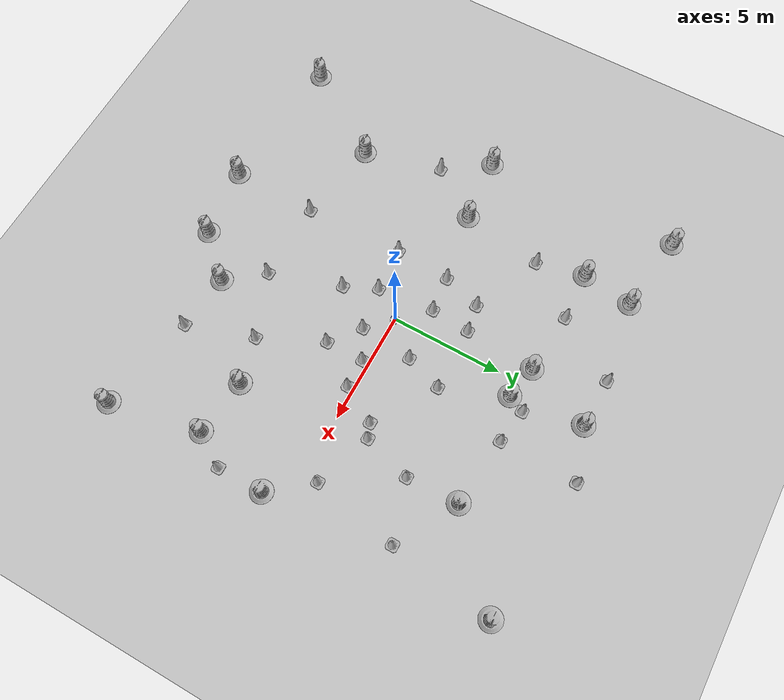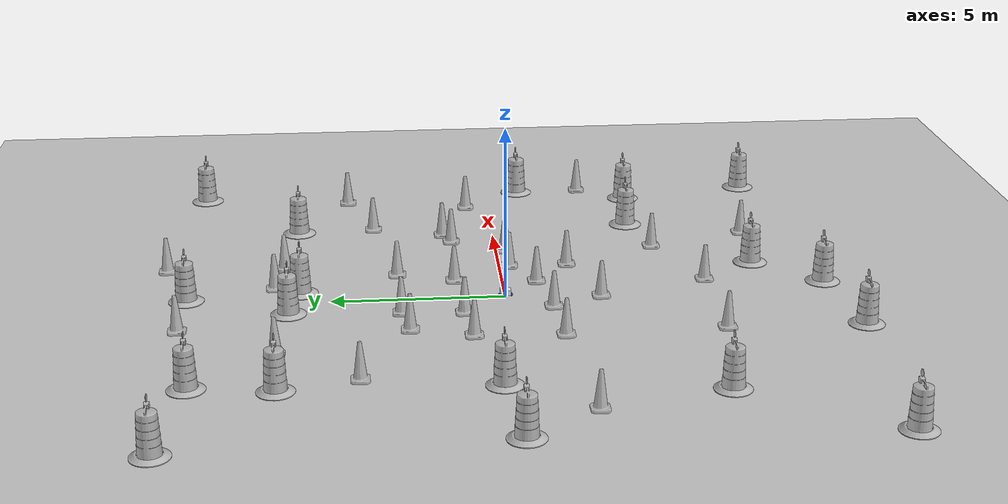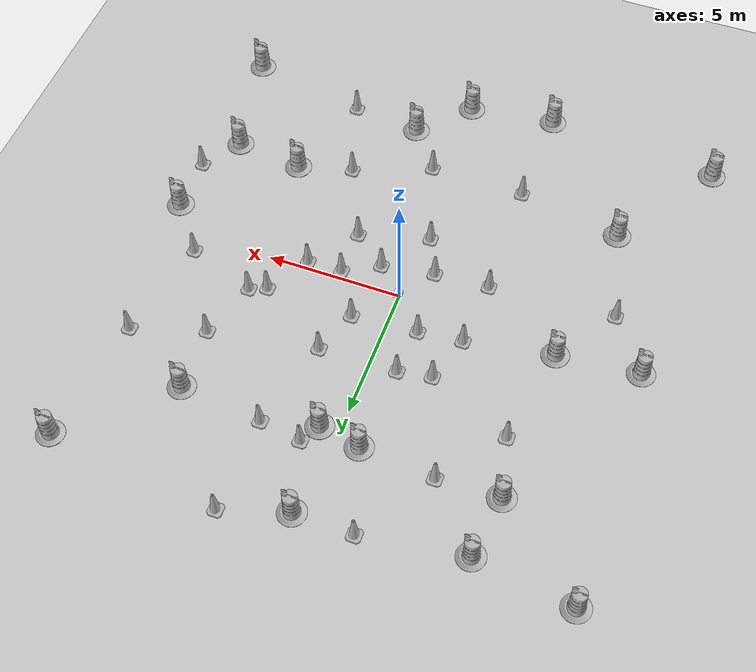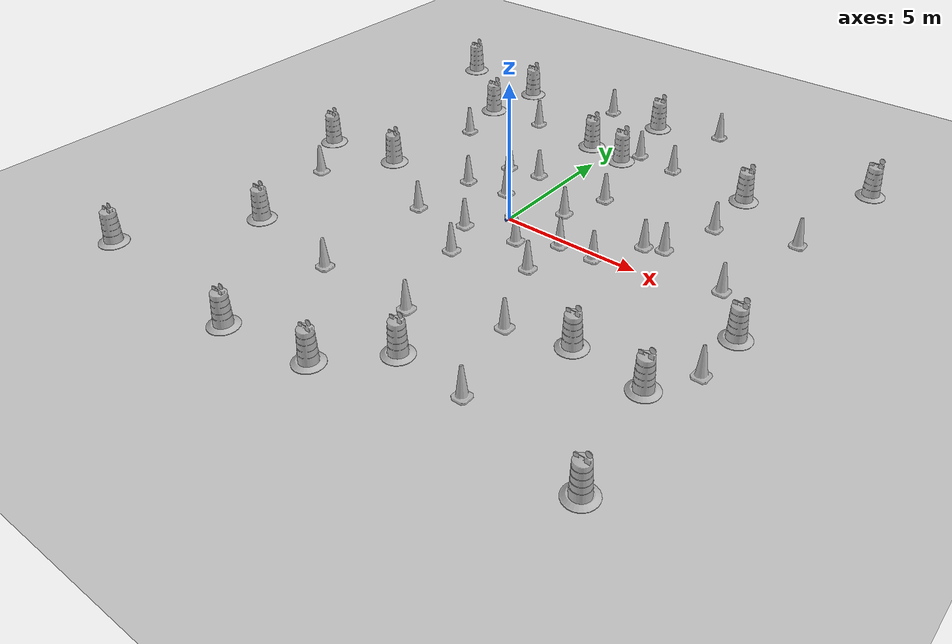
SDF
<sdf version="1.7">
 <world name="default">
  <light name="sun" type="directional">
   <pose>0 0 10 0 -0 0</pose>
   <diffuse>0.8 0.8 0.8 1</diffuse>
   <specular>0.2 0.2 0.2 1</specular>
   <attenuation>
    <range>1000</range>
    <constant>0.9</constant>
    <linear>0.01</linear>
    <quadratic>0.001</quadratic>
   </attenuation>
   <direction>-0.5 0.1 -0.9</direction>
   <spot><inner_angle>0</inner_angle><outer_angle>0</outer_angle><falloff>0</falloff></spot>
  </light>
  <model name="ground_plane">
   <static>1</static>
   <link name="link">
    <collision name="collision">
     <geometry><plane><normal>0 0 1</normal><size>100 100</size></plane></geometry>
     <surface>
      <contact><collide_bitmask>65535</collide_bitmask></contact>
      <friction><ode><mu>100</mu><mu2>50</mu2></ode></friction>
     </surface>
    </collision>
    <visual name="visual">
     <cast_shadows>0</cast_shadows>
     <geometry><plane><normal>0 0 1</normal><size>100 100</size></plane></geometry>
     <material>
      <script><uri>file://media/materials/scripts/gazebo.material</uri><name>Gazebo/Grey</name></script>
     </material>
    </visual>
   </link>
  </model>
  <gravity>0 0 -9.8</gravity>
  <magnetic_field>6e-06 2.3e-05 -4.2e-05</magnetic_field>
  <atmosphere type="adiabatic"/>
  <physics type="ode">
   <max_step_size>0.001</max_step_size>
   <real_time_factor>1</real_time_factor>
   <real_time_update_rate>1000</real_time_update_rate>
  </physics>
  <scene><ambient>0.4 0.4 0.4 1</ambient><background>0.7 0.7 0.7 1</background><shadows>1</shadows></scene>
  <audio><device>default</device></audio>
  <spherical_coordinates>
   <surface_model>EARTH_WGS84</surface_model>
   <latitude_deg>0</latitude_deg>
   <longitude_deg>0</longitude_deg>
   <elevation>0</elevation>
   <heading_deg>0</heading_deg>
  </spherical_coordinates>
  <model name="my_bot">
   <link name="base_link">
    <inertial>
     <pose>0.055714 0 0.078571 0 -0 0</pose>
     <mass>0.7</mass>
     <inertia>
      <ixx>0.0064169</ixx>
      <ixy>0</ixy>
      <ixz>0.00118929</ixz>
      <iyy>0.00745405</iyy>
      <iyz>0</iyz>
      <izz>0.00876214</izz>
     </inertia>
    </inertial>
    <collision name="base_link_fixed_joint_lump__chassis_collision">
     <pose>0.05 0 0.075 0 -0 0</pose>
     <geometry><box><size>0.3 0.3 0.15</size></box></geometry>
    </collision>
    <collision name="base_link_fixed_joint_lump__caster_wheel_collision_1">
     <pose>0.14 0 0 0 -0 0</pose>
     <geometry><sphere><radius>0.05</radius></sphere></geometry>
     <surface><friction><ode><mu>0.001</mu><mu2>0.001</mu2></ode></friction></surface>
    </collision>
    <collision name="base_link_fixed_joint_lump__laser_frame_collision_2">
     <pose>0 0 0.175 0 -0 0</pose>
     <geometry><cylinder><length>0.04</length><radius>0.05</radius></cylinder></geometry>
    </collision>
    <visual name="base_link_fixed_joint_lump__chassis_visual">
     <pose>0.05 0 0.075 0 -0 0</pose>
     <geometry><box><size>0.3 0.3 0.15</size></box></geometry>
     <material>
      <script><name>Gazebo/White</name><uri>file://media/materials/scripts/gazebo.material</uri></script>
     </material>
    </visual>
    <visual name="base_link_fixed_joint_lump__caster_wheel_visual_1">
     <pose>0.14 0 0 0 -0 0</pose>
     <geometry><sphere><radius>0.05</radius></sphere></geometry>
     <material>
      <script><name>Gazebo/Black</name><uri>file://media/materials/scripts/gazebo.material</uri></script>
     </material>
    </visual>
    <visual name="base_link_fixed_joint_lump__laser_frame_visual_2">
     <pose>0 0 0.175 0 -0 0</pose>
     <geometry><cylinder><length>0.04</length><radius>0.05</radius></cylinder></geometry>
     <material>
      <script><name>Gazebo/Red</name><uri>file://media/materials/scripts/gazebo.material</uri></script>
     </material>
    </visual>
    <sensor name="laser" type="ray">
     <visualize>1</visualize>
     <update_rate>10</update_rate>
     <ray>
      <scan>
       <horizontal>
        <samples>360</samples>
        <resolution>1</resolution>
        <min_angle>-3.14</min_angle>
        <max_angle>3.14</max_angle>
       </horizontal>
       <vertical><samples>1</samples><min_angle>0</min_angle><max_angle>0</max_angle></vertical>
      </scan>
      <range><min>0.3</min><max>12</max></range>
     </ray>
     <plugin name="laser_controller" filename="libgazebo_ros_ray_sensor.so">
      <ros><argument>~/out:=scan</argument></ros>
      <output_type>sensor_msgs/LaserScan</output_type>
      <frame_name>laser_frame</frame_name>
     </plugin>
     <pose>0 0 0.175 0 -0 0</pose>
    </sensor>
   </link>
   <joint name="left_wheel_joint" type="revolute">
    <pose relative_to="base_link">0 0.175 0 -1.5708 0 0</pose>
    <parent>base_link</parent>
    <child>left_wheel</child>
    <axis>
     <xyz>0 0 1</xyz>
     <limit><lower>-1e+16</lower><upper>1e+16</upper></limit>
     <dynamics><spring_reference>0</spring_reference><spring_stiffness>0</spring_stiffness></dynamics>
    </axis>
   </joint>
   <link name="left_wheel">
    <pose relative_to="left_wheel_joint">0 0 0 0 -0 0</pose>
    <inertial>
     <mass>0.1</mass>
     <inertia>
      <ixx>7.58333e-05</ixx>
      <ixy>0</ixy>
      <ixz>0</ixz>
      <iyy>7.58333e-05</iyy>
      <iyz>0</iyz>
      <izz>0.000125</izz>
     </inertia>
    </inertial>
    <collision name="left_wheel_collision">
     <geometry><cylinder><length>0.04</length><radius>0.05</radius></cylinder></geometry>
    </collision>
    <visual name="left_wheel_visual">
     <geometry><cylinder><length>0.04</length><radius>0.05</radius></cylinder></geometry>
     <material>
      <script><name>Gazebo/Blue</name><uri>file://media/materials/scripts/gazebo.material</uri></script>
     </material>
    </visual>
   </link>
   <joint name="right_wheel_joint" type="revolute">
    <pose relative_to="base_link">0 -0.175 0 1.5708 -0 0</pose>
    <parent>base_link</parent>
    <child>right_wheel</child>
    <axis>
     <xyz>0 0 -1</xyz>
     <limit><lower>-1e+16</lower><upper>1e+16</upper></limit>
     <dynamics><spring_reference>0</spring_reference><spring_stiffness>0</spring_stiffness></dynamics>
    </axis>
   </joint>
   <link name="right_wheel">
    <pose relative_to="right_wheel_joint">0 0 0 0 -0 0</pose>
    <inertial>
     <mass>0.1</mass>
     <inertia>
      <ixx>7.58333e-05</ixx>
      <ixy>0</ixy>
      <ixz>0</ixz>
      <iyy>7.58333e-05</iyy>
      <iyz>0</iyz>
      <izz>0.000125</izz>
     </inertia>
    </inertial>
    <collision name="right_wheel_collision">
     <geometry><cylinder><length>0.04</length><radius>0.05</radius></cylinder></geometry>
    </collision>
    <visual name="right_wheel_visual">
     <geometry><cylinder><length>0.04</length><radius>0.05</radius></cylinder></geometry>
     <material>
      <script><name>Gazebo/Blue</name><uri>file://media/materials/scripts/gazebo.material</uri></script>
     </material>
    </visual>
   </link>
   <static>0</static>
   <plugin name="diff_drive" filename="libgazebo_ros_diff_drive.so">
    <left_joint>left_wheel_joint</left_joint>
    <right_joint>right_wheel_joint</right_joint>
    <wheel_separation>0.35</wheel_separation>
    <wheel_diameter>0.1</wheel_diameter>
    <max_wheel_torque>200</max_wheel_torque>
    <max_wheel_acceleration>10.0</max_wheel_acceleration>
    <odometry_frame>odom</odometry_frame>
    <robot_base_frame>base_link</robot_base_frame>
    <publish_odom>1</publish_odom>
    <publish_odom_tf>1</publish_odom_tf>
    <publish_wheel_tf>1</publish_wheel_tf>
   </plugin>
   <pose>0.005518 3.7e-05 0.05 0 1.2e-05 0.00013</pose>
  </model>
  <model name="Construction Cone">
   <link name="link">
    <collision name="collision">
     <geometry>
      <mesh><scale>10 10 10</scale><uri>model://construction_cone/meshes/construction_cone.dae</uri></mesh>
     </geometry>
    </collision>
    <visual name="visual">
     <geometry>
      <mesh><scale>10 10 10</scale><uri>model://construction_cone/meshes/construction_cone.dae</uri></mesh>
     </geometry>
    </visual>
    <inertial>
     <inertia><ixx>1</ixx><ixy>0</ixy><ixz>0</ixz><iyy>1</iyy><iyz>0</iyz><izz>1</izz></inertia>
     <mass>1</mass>
    </inertial>
   </link>
   <pose>2.33774 -2.02492 -0 0 -1e-06 0</pose>
  </model>
  <model name="Construction Barrel">
   <link name="link">
    <inertial>
     <pose>0 0 0.4 0 -0 0</pose>
     <mass>500</mass>
     <inertia><ixx>51.2096</ixx><iyy>51.2096</iyy><izz>25</izz><ixy>0</ixy><ixz>0</ixz><iyz>0</iyz></inertia>
    </inertial>
    <collision name="collision">
     <geometry><mesh><uri>model://construction_barrel/meshes/construction_barrel.dae</uri></mesh></geometry>
    </collision>
    <visual name="visual">
     <geometry><mesh><uri>model://construction_barrel/meshes/construction_barrel.dae</uri></mesh></geometry>
    </visual>
   </link>
   <pose>-9.25869 -9.20334 -1e-06 3e-06 7e-06 -4e-05</pose>
  </model>
  <model name="Construction Barrel_0">
   <link name="link">
    <inertial>
     <pose>0 0 0.4 0 -0 0</pose>
     <mass>500</mass>
     <inertia><ixx>51.2096</ixx><iyy>51.2096</iyy><izz>25</izz><ixy>0</ixy><ixz>0</ixz><iyz>0</iyz></inertia>
    </inertial>
    <collision name="collision">
     <geometry><mesh><uri>model://construction_barrel/meshes/construction_barrel.dae</uri></mesh></geometry>
    </collision>
    <visual name="visual">
     <geometry><mesh><uri>model://construction_barrel/meshes/construction_barrel.dae</uri></mesh></geometry>
    </visual>
   </link>
   <pose>-9.06813 9.0915 -0 1e-06 -1e-06 -3.8e-05</pose>
  </model>
  <model name="Construction Barrel_1">
   <link name="link">
    <inertial>
     <pose>0 0 0.4 0 -0 0</pose>
     <mass>500</mass>
     <inertia><ixx>51.2096</ixx><iyy>51.2096</iyy><izz>25</izz><ixy>0</ixy><ixz>0</ixz><iyz>0</iyz></inertia>
    </inertial>
    <collision name="collision">
     <geometry><mesh><uri>model://construction_barrel/meshes/construction_barrel.dae</uri></mesh></geometry>
    </collision>
    <visual name="visual">
     <geometry><mesh><uri>model://construction_barrel/meshes/construction_barrel.dae</uri></mesh></geometry>
    </visual>
   </link>
   <pose>-8.88341 0.243695 -1e-06 3e-06 -0 -3.8e-05</pose>
  </model>
  <model name="Construction Barrel_2">
   <link name="link">
    <inertial>
     <pose>0 0 0.4 0 -0 0</pose>
     <mass>500</mass>
     <inertia><ixx>51.2096</ixx><iyy>51.2096</iyy><izz>25</izz><ixy>0</ixy><ixz>0</ixz><iyz>0</iyz></inertia>
    </inertial>
    <collision name="collision">
     <geometry><mesh><uri>model://construction_barrel/meshes/construction_barrel.dae</uri></mesh></geometry>
    </collision>
    <visual name="visual">
     <geometry><mesh><uri>model://construction_barrel/meshes/construction_barrel.dae</uri></mesh></geometry>
    </visual>
   </link>
   <pose>0.362113 -9.35849 0 0 0 -3.3e-05</pose>
  </model>
  <model name="Construction Barrel_3">
   <link name="link">
    <inertial>
     <pose>0 0 0.4 0 -0 0</pose>
     <mass>500</mass>
     <inertia><ixx>51.2096</ixx><iyy>51.2096</iyy><izz>25</izz><ixy>0</ixy><ixz>0</ixz><iyz>0</iyz></inertia>
    </inertial>
    <collision name="collision">
     <geometry><mesh><uri>model://construction_barrel/meshes/construction_barrel.dae</uri></mesh></geometry>
    </collision>
    <visual name="visual">
     <geometry><mesh><uri>model://construction_barrel/meshes/construction_barrel.dae</uri></mesh></geometry>
    </visual>
   </link>
   <pose>5.66029 -4.31001 -1e-06 0 5e-06 -3.1e-05</pose>
  </model>
  <model name="Construction Barrel_4">
   <link name="link">
    <inertial>
     <pose>0 0 0.4 0 -0 0</pose>
     <mass>500</mass>
     <inertia><ixx>51.2096</ixx><iyy>51.2096</iyy><izz>25</izz><ixy>0</ixy><ixz>0</ixz><iyz>0</iyz></inertia>
    </inertial>
    <collision name="collision">
     <geometry><mesh><uri>model://construction_barrel/meshes/construction_barrel.dae</uri></mesh></geometry>
    </collision>
    <visual name="visual">
     <geometry><mesh><uri>model://construction_barrel/meshes/construction_barrel.dae</uri></mesh></geometry>
    </visual>
   </link>
   <pose>9.00315 -8.67987 -4e-06 -5e-06 -7e-06 -3.4e-05</pose>
  </model>
  <model name="Construction Barrel_5">
   <link name="link">
    <inertial>
     <pose>0 0 0.4 0 -0 0</pose>
     <mass>500</mass>
     <inertia><ixx>51.2096</ixx><iyy>51.2096</iyy><izz>25</izz><ixy>0</ixy><ixz>0</ixz><iyz>0</iyz></inertia>
    </inertial>
    <collision name="collision">
     <geometry><mesh><uri>model://construction_barrel/meshes/construction_barrel.dae</uri></mesh></geometry>
    </collision>
    <visual name="visual">
     <geometry><mesh><uri>model://construction_barrel/meshes/construction_barrel.dae</uri></mesh></geometry>
    </visual>
   </link>
   <pose>9.09772 -1.11607 0 1e-06 1e-06 -3.5e-05</pose>
  </model>
  <model name="Construction Barrel_6">
   <link name="link">
    <inertial>
     <pose>0 0 0.4 0 -0 0</pose>
     <mass>500</mass>
     <inertia><ixx>51.2096</ixx><iyy>51.2096</iyy><izz>25</izz><ixy>0</ixy><ixz>0</ixz><iyz>0</iyz></inertia>
    </inertial>
    <collision name="collision">
     <geometry><mesh><uri>model://construction_barrel/meshes/construction_barrel.dae</uri></mesh></geometry>
    </collision>
    <visual name="visual">
     <geometry><mesh><uri>model://construction_barrel/meshes/construction_barrel.dae</uri></mesh></geometry>
    </visual>
   </link>
   <pose>9.02631 9.15313 -1e-06 4e-06 -1e-06 -2.7e-05</pose>
  </model>
  <model name="Construction Barrel_7">
   <link name="link">
    <inertial>
     <pose>0 0 0.4 0 -0 0</pose>
     <mass>500</mass>
     <inertia><ixx>51.2096</ixx><iyy>51.2096</iyy><izz>25</izz><ixy>0</ixy><ixz>0</ixz><iyz>0</iyz></inertia>
    </inertial>
    <collision name="collision">
     <geometry><mesh><uri>model://construction_barrel/meshes/construction_barrel.dae</uri></mesh></geometry>
    </collision>
    <visual name="visual">
     <geometry><mesh><uri>model://construction_barrel/meshes/construction_barrel.dae</uri></mesh></geometry>
    </visual>
   </link>
   <pose>0.366788 9.09383 -1e-06 3e-06 7e-06 -3.1e-05</pose>
  </model>
  <model name="Construction Barrel_8">
   <link name="link">
    <inertial>
     <pose>0 0 0.4 0 -0 0</pose>
     <mass>500</mass>
     <inertia><ixx>51.2096</ixx><iyy>51.2096</iyy><izz>25</izz><ixy>0</ixy><ixz>0</ixz><iyz>0</iyz></inertia>
    </inertial>
    <collision name="collision">
     <geometry><mesh><uri>model://construction_barrel/meshes/construction_barrel.dae</uri></mesh></geometry>
    </collision>
    <visual name="visual">
     <geometry><mesh><uri>model://construction_barrel/meshes/construction_barrel.dae</uri></mesh></geometry>
    </visual>
   </link>
   <pose>-6.60405 -5.22721 -4e-06 -5e-06 -7e-06 -3.2e-05</pose>
  </model>
  <model name="Construction Barrel_9">
   <link name="link">
    <inertial>
     <pose>0 0 0.4 0 -0 0</pose>
     <mass>500</mass>
     <inertia><ixx>51.2096</ixx><iyy>51.2096</iyy><izz>25</izz><ixy>0</ixy><ixz>0</ixz><iyz>0</iyz></inertia>
    </inertial>
    <collision name="collision">
     <geometry><mesh><uri>model://construction_barrel/meshes/construction_barrel.dae</uri></mesh></geometry>
    </collision>
    <visual name="visual">
     <geometry><mesh><uri>model://construction_barrel/meshes/construction_barrel.dae</uri></mesh></geometry>
    </visual>
   </link>
   <pose>-5.80458 6.31757 0 0 0 -3.1e-05</pose>
  </model>
  <model name="Construction Barrel_10">
   <link name="link">
    <inertial>
     <pose>0 0 0.4 0 -0 0</pose>
     <mass>500</mass>
     <inertia><ixx>51.2096</ixx><iyy>51.2096</iyy><izz>25</izz><ixy>0</ixy><ixz>0</ixz><iyz>0</iyz></inertia>
    </inertial>
    <collision name="collision">
     <geometry><mesh><uri>model://construction_barrel/meshes/construction_barrel.dae</uri></mesh></geometry>
    </collision>
    <visual name="visual">
     <geometry><mesh><uri>model://construction_barrel/meshes/construction_barrel.dae</uri></mesh></geometry>
    </visual>
   </link>
   <pose>5.69066 6.03686 -2e-06 7e-06 -4e-06 -2.5e-05</pose>
  </model>
  <model name="Construction Barrel_11">
   <link name="link">
    <inertial>
     <pose>0 0 0.4 0 -0 0</pose>
     <mass>500</mass>
     <inertia><ixx>51.2096</ixx><iyy>51.2096</iyy><izz>25</izz><ixy>0</ixy><ixz>0</ixz><iyz>0</iyz></inertia>
    </inertial>
    <collision name="collision">
     <geometry><mesh><uri>model://construction_barrel/meshes/construction_barrel.dae</uri></mesh></geometry>
    </collision>
    <visual name="visual">
     <geometry><mesh><uri>model://construction_barrel/meshes/construction_barrel.dae</uri></mesh></geometry>
    </visual>
   </link>
   <pose>0.706813 5.86452 -2e-06 4e-06 7e-06 -2.4e-05</pose>
  </model>
  <model name="Construction Cone_0">
   <link name="link">
    <collision name="collision">
     <geometry>
      <mesh><scale>10 10 10</scale><uri>model://construction_cone/meshes/construction_cone.dae</uri></mesh>
     </geometry>
    </collision>
    <visual name="visual">
     <geometry>
      <mesh><scale>10 10 10</scale><uri>model://construction_cone/meshes/construction_cone.dae</uri></mesh>
     </geometry>
    </visual>
    <inertial>
     <inertia><ixx>1</ixx><ixy>0</ixy><ixz>0</ixz><iyy>1</iyy><iyz>0</iyz><izz>1</izz></inertia>
     <mass>1</mass>
    </inertial>
   </link>
   <pose>0.802844 -5.92801 -0 0 -0 0</pose>
  </model>
  <model name="Construction Cone_1">
   <link name="link">
    <collision name="collision">
     <geometry>
      <mesh><scale>10 10 10</scale><uri>model://construction_cone/meshes/construction_cone.dae</uri></mesh>
     </geometry>
    </collision>
    <visual name="visual">
     <geometry>
      <mesh><scale>10 10 10</scale><uri>model://construction_cone/meshes/construction_cone.dae</uri></mesh>
     </geometry>
    </visual>
    <inertial>
     <inertia><ixx>1</ixx><ixy>0</ixy><ixz>0</ixz><iyy>1</iyy><iyz>0</iyz><izz>1</izz></inertia>
     <mass>1</mass>
    </inertial>
   </link>
   <pose>-2.88668 -1.41078 -0 0 -0 0</pose>
  </model>
  <model name="Construction Cone_2">
   <link name="link">
    <collision name="collision">
     <geometry>
      <mesh><scale>10 10 10</scale><uri>model://construction_cone/meshes/construction_cone.dae</uri></mesh>
     </geometry>
    </collision>
    <visual name="visual">
     <geometry>
      <mesh><scale>10 10 10</scale><uri>model://construction_cone/meshes/construction_cone.dae</uri></mesh>
     </geometry>
    </visual>
    <inertial>
     <inertia><ixx>1</ixx><ixy>0</ixy><ixz>0</ixz><iyy>1</iyy><iyz>0</iyz><izz>1</izz></inertia>
     <mass>1</mass>
    </inertial>
   </link>
   <pose>-2.21291 2.80535 -0 0 -1e-06 0</pose>
  </model>
  <model name="Construction Cone_3">
   <link name="link">
    <collision name="collision">
     <geometry>
      <mesh><scale>10 10 10</scale><uri>model://construction_cone/meshes/construction_cone.dae</uri></mesh>
     </geometry>
    </collision>
    <visual name="visual">
     <geometry>
      <mesh><scale>10 10 10</scale><uri>model://construction_cone/meshes/construction_cone.dae</uri></mesh>
     </geometry>
    </visual>
    <inertial>
     <inertia><ixx>1</ixx><ixy>0</ixy><ixz>0</ixz><iyy>1</iyy><iyz>0</iyz><izz>1</izz></inertia>
     <mass>1</mass>
    </inertial>
   </link>
   <pose>1.85387 3.05655 -0 0 -0 0</pose>
  </model>
  <model name="Construction Cone_4">
   <link name="link">
    <collision name="collision">
     <geometry>
      <mesh><scale>10 10 10</scale><uri>model://construction_cone/meshes/construction_cone.dae</uri></mesh>
     </geometry>
    </collision>
    <visual name="visual">
     <geometry>
      <mesh><scale>10 10 10</scale><uri>model://construction_cone/meshes/construction_cone.dae</uri></mesh>
     </geometry>
    </visual>
    <inertial>
     <inertia><ixx>1</ixx><ixy>0</ixy><ixz>0</ixz><iyy>1</iyy><iyz>0</iyz><izz>1</izz></inertia>
     <mass>1</mass>
    </inertial>
   </link>
   <pose>5.1507 1.56515 -0 0 -0 0</pose>
  </model>
  <model name="Construction Cone_5">
   <link name="link">
    <collision name="collision">
     <geometry>
      <mesh><scale>10 10 10</scale><uri>model://construction_cone/meshes/construction_cone.dae</uri></mesh>
     </geometry>
    </collision>
    <visual name="visual">
     <geometry>
      <mesh><scale>10 10 10</scale><uri>model://construction_cone/meshes/construction_cone.dae</uri></mesh>
     </geometry>
    </visual>
    <inertial>
     <inertia><ixx>1</ixx><ixy>0</ixy><ixz>0</ixz><iyy>1</iyy><iyz>0</iyz><izz>1</izz></inertia>
     <mass>1</mass>
    </inertial>
   </link>
   <pose>3.6155 -0.272548 -0 0 -0 0</pose>
  </model>
  <model name="Construction Cone_6">
   <link name="link">
    <collision name="collision">
     <geometry>
      <mesh><scale>10 10 10</scale><uri>model://construction_cone/meshes/construction_cone.dae</uri></mesh>
     </geometry>
    </collision>
    <visual name="visual">
     <geometry>
      <mesh><scale>10 10 10</scale><uri>model://construction_cone/meshes/construction_cone.dae</uri></mesh>
     </geometry>
    </visual>
    <inertial>
     <inertia><ixx>1</ixx><ixy>0</ixy><ixz>0</ixz><iyy>1</iyy><iyz>0</iyz><izz>1</izz></inertia>
     <mass>1</mass>
    </inertial>
   </link>
   <pose>-0.995877 3.00791 -0 0 -0 0</pose>
  </model>
  <model name="Construction Cone_7">
   <link name="link">
    <collision name="collision">
     <geometry>
      <mesh><scale>10 10 10</scale><uri>model://construction_cone/meshes/construction_cone.dae</uri></mesh>
     </geometry>
    </collision>
    <visual name="visual">
     <geometry>
      <mesh><scale>10 10 10</scale><uri>model://construction_cone/meshes/construction_cone.dae</uri></mesh>
     </geometry>
    </visual>
    <inertial>
     <inertia><ixx>1</ixx><ixy>0</ixy><ixz>0</ixz><iyy>1</iyy><iyz>0</iyz><izz>1</izz></inertia>
     <mass>1</mass>
    </inertial>
   </link>
   <pose>-2.74013 1.08239 -0 0 -0 0</pose>
  </model>
  <model name="Construction Cone_8">
   <link name="link">
    <collision name="collision">
     <geometry>
      <mesh><scale>10 10 10</scale><uri>model://construction_cone/meshes/construction_cone.dae</uri></mesh>
     </geometry>
    </collision>
    <visual name="visual">
     <geometry>
      <mesh><scale>10 10 10</scale><uri>model://construction_cone/meshes/construction_cone.dae</uri></mesh>
     </geometry>
    </visual>
    <inertial>
     <inertia><ixx>1</ixx><ixy>0</ixy><ixz>0</ixz><iyy>1</iyy><iyz>0</iyz><izz>1</izz></inertia>
     <mass>1</mass>
    </inertial>
   </link>
   <pose>-0.219625 -2.7327 -0 0 -0 0</pose>
  </model>
  <model name="Construction Cone_9">
   <link name="link">
    <collision name="collision">
     <geometry>
      <mesh><scale>10 10 10</scale><uri>model://construction_cone/meshes/construction_cone.dae</uri></mesh>
     </geometry>
    </collision>
    <visual name="visual">
     <geometry>
      <mesh><scale>10 10 10</scale><uri>model://construction_cone/meshes/construction_cone.dae</uri></mesh>
     </geometry>
    </visual>
    <inertial>
     <inertia><ixx>1</ixx><ixy>0</ixy><ixz>0</ixz><iyy>1</iyy><iyz>0</iyz><izz>1</izz></inertia>
     <mass>1</mass>
    </inertial>
   </link>
   <pose>-0.880647 -1.29426 -0 0 -0 0</pose>
  </model>
  <model name="Construction Cone_10">
   <link name="link">
    <collision name="collision">
     <geometry>
      <mesh><scale>10 10 10</scale><uri>model://construction_cone/meshes/construction_cone.dae</uri></mesh>
     </geometry>
    </collision>
    <visual name="visual">
     <geometry>
      <mesh><scale>10 10 10</scale><uri>model://construction_cone/meshes/construction_cone.dae</uri></mesh>
     </geometry>
    </visual>
    <inertial>
     <inertia><ixx>1</ixx><ixy>0</ixy><ixz>0</ixz><iyy>1</iyy><iyz>0</iyz><izz>1</izz></inertia>
     <mass>1</mass>
    </inertial>
   </link>
   <pose>1.28978 1.40053 -0 0 -0 0</pose>
  </model>
  <model name="Construction Cone_11">
   <link name="link">
    <collision name="collision">
     <geometry>
      <mesh><scale>10 10 10</scale><uri>model://construction_cone/meshes/construction_cone.dae</uri></mesh>
     </geometry>
    </collision>
    <visual name="visual">
     <geometry>
      <mesh><scale>10 10 10</scale><uri>model://construction_cone/meshes/construction_cone.dae</uri></mesh>
     </geometry>
    </visual>
    <inertial>
     <inertia><ixx>1</ixx><ixy>0</ixy><ixz>0</ixz><iyy>1</iyy><iyz>0</iyz><izz>1</izz></inertia>
     <mass>1</mass>
    </inertial>
   </link>
   <pose>2.32996 -0.299557 -0 0 -0 0</pose>
  </model>
  <model name="Construction Cone_12">
   <link name="link">
    <collision name="collision">
     <geometry>
      <mesh><scale>10 10 10</scale><uri>model://construction_cone/meshes/construction_cone.dae</uri></mesh>
     </geometry>
    </collision>
    <visual name="visual">
     <geometry>
      <mesh><scale>10 10 10</scale><uri>model://construction_cone/meshes/construction_cone.dae</uri></mesh>
     </geometry>
    </visual>
    <inertial>
     <inertia><ixx>1</ixx><ixy>0</ixy><ixz>0</ixz><iyy>1</iyy><iyz>0</iyz><izz>1</izz></inertia>
     <mass>1</mass>
    </inertial>
   </link>
   <pose>-2.75321 -5.89139 -0 0 -0 0</pose>
  </model>
  <model name="Construction Cone_13">
   <link name="link">
    <collision name="collision">
     <geometry>
      <mesh><scale>10 10 10</scale><uri>model://construction_cone/meshes/construction_cone.dae</uri></mesh>
     </geometry>
    </collision>
    <visual name="visual">
     <geometry>
      <mesh><scale>10 10 10</scale><uri>model://construction_cone/meshes/construction_cone.dae</uri></mesh>
     </geometry>
    </visual>
    <inertial>
     <inertia><ixx>1</ixx><ixy>0</ixy><ixz>0</ixz><iyy>1</iyy><iyz>0</iyz><izz>1</izz></inertia>
     <mass>1</mass>
    </inertial>
   </link>
   <pose>4.53028 1.31598 -0 0 -1e-06 0</pose>
  </model>
  <model name="Construction Cone_14">
   <link name="link">
    <collision name="collision">
     <geometry>
      <mesh><scale>10 10 10</scale><uri>model://construction_cone/meshes/construction_cone.dae</uri></mesh>
     </geometry>
    </collision>
    <visual name="visual">
     <geometry>
      <mesh><scale>10 10 10</scale><uri>model://construction_cone/meshes/construction_cone.dae</uri></mesh>
     </geometry>
    </visual>
    <inertial>
     <inertia><ixx>1</ixx><ixy>0</ixy><ixz>0</ixz><iyy>1</iyy><iyz>0</iyz><izz>1</izz></inertia>
     <mass>1</mass>
    </inertial>
   </link>
   <pose>4.5999 -7.80699 -0 0 -1e-06 0</pose>
  </model>
  <model name="Construction Cone_15">
   <link name="link">
    <collision name="collision">
     <geometry>
      <mesh><scale>10 10 10</scale><uri>model://construction_cone/meshes/construction_cone.dae</uri></mesh>
     </geometry>
    </collision>
    <visual name="visual">
     <geometry>
      <mesh><scale>10 10 10</scale><uri>model://construction_cone/meshes/construction_cone.dae</uri></mesh>
     </geometry>
    </visual>
    <inertial>
     <inertia><ixx>1</ixx><ixy>0</ixy><ixz>0</ixz><iyy>1</iyy><iyz>0</iyz><izz>1</izz></inertia>
     <mass>1</mass>
    </inertial>
   </link>
   <pose>9.12195 -3.16125 -0 0 -0 0</pose>
  </model>
  <model name="Construction Cone_16">
   <link name="link">
    <collision name="collision">
     <geometry>
      <mesh><scale>10 10 10</scale><uri>model://construction_cone/meshes/construction_cone.dae</uri></mesh>
     </geometry>
    </collision>
    <visual name="visual">
     <geometry>
      <mesh><scale>10 10 10</scale><uri>model://construction_cone/meshes/construction_cone.dae</uri></mesh>
     </geometry>
    </visual>
    <inertial>
     <inertia><ixx>1</ixx><ixy>0</ixy><ixz>0</ixz><iyy>1</iyy><iyz>0</iyz><izz>1</izz></inertia>
     <mass>1</mass>
    </inertial>
   </link>
   <pose>8.40615 4.51513 -0 0 -0 0</pose>
  </model>
  <model name="Construction Cone_17">
   <link name="link">
    <collision name="collision">
     <geometry>
      <mesh><scale>10 10 10</scale><uri>model://construction_cone/meshes/construction_cone.dae</uri></mesh>
     </geometry>
    </collision>
    <visual name="visual">
     <geometry>
      <mesh><scale>10 10 10</scale><uri>model://construction_cone/meshes/construction_cone.dae</uri></mesh>
     </geometry>
    </visual>
    <inertial>
     <inertia><ixx>1</ixx><ixy>0</ixy><ixz>0</ixz><iyy>1</iyy><iyz>0</iyz><izz>1</izz></inertia>
     <mass>1</mass>
    </inertial>
   </link>
   <pose>3.64233 -4.81555 -0 0 -0 0</pose>
  </model>
  <model name="Construction Barrel_12">
   <link name="link">
    <inertial>
     <pose>0 0 0.4 0 -0 0</pose>
     <mass>500</mass>
     <inertia><ixx>51.2096</ixx><iyy>51.2096</iyy><izz>25</izz><ixy>0</ixy><ixz>0</ixz><iyz>0</iyz></inertia>
    </inertial>
    <collision name="collision">
     <geometry><mesh><uri>model://construction_barrel/meshes/construction_barrel.dae</uri></mesh></geometry>
    </collision>
    <visual name="visual">
     <geometry><mesh><uri>model://construction_barrel/meshes/construction_barrel.dae</uri></mesh></geometry>
    </visual>
   </link>
   <pose>8.19472 -4.60871 -5e-06 -7e-06 -1e-05 -1.1e-05</pose>
  </model>
  <model name="Construction Barrel_13">
   <link name="link">
    <inertial>
     <pose>0 0 0.4 0 -0 0</pose>
     <mass>500</mass>
     <inertia><ixx>51.2096</ixx><iyy>51.2096</iyy><izz>25</izz><ixy>0</ixy><ixz>0</ixz><iyz>0</iyz></inertia>
    </inertial>
    <collision name="collision">
     <geometry><mesh><uri>model://construction_barrel/meshes/construction_barrel.dae</uri></mesh></geometry>
    </collision>
    <visual name="visual">
     <geometry><mesh><uri>model://construction_barrel/meshes/construction_barrel.dae</uri></mesh></geometry>
    </visual>
   </link>
   <pose>-5.91034 0.514501 -0 0 -0 -1.1e-05</pose>
  </model>
  <model name="Construction Barrel_14">
   <link name="link">
    <inertial>
     <pose>0 0 0.4 0 -0 0</pose>
     <mass>500</mass>
     <inertia><ixx>51.2096</ixx><iyy>51.2096</iyy><izz>25</izz><ixy>0</ixy><ixz>0</ixz><iyz>0</iyz></inertia>
    </inertial>
    <collision name="collision">
     <geometry><mesh><uri>model://construction_barrel/meshes/construction_barrel.dae</uri></mesh></geometry>
    </collision>
    <visual name="visual">
     <geometry><mesh><uri>model://construction_barrel/meshes/construction_barrel.dae</uri></mesh></geometry>
    </visual>
   </link>
   <pose>-5.50303 8.58143 -1e-06 1e-06 -2e-06 -1e-05</pose>
  </model>
  <model name="Construction Barrel_15">
   <link name="link">
    <inertial>
     <pose>0 0 0.4 0 -0 0</pose>
     <mass>500</mass>
     <inertia><ixx>51.2096</ixx><iyy>51.2096</iyy><izz>25</izz><ixy>0</ixy><ixz>0</ixz><iyz>0</iyz></inertia>
    </inertial>
    <collision name="collision">
     <geometry><mesh><uri>model://construction_barrel/meshes/construction_barrel.dae</uri></mesh></geometry>
    </collision>
    <visual name="visual">
     <geometry><mesh><uri>model://construction_barrel/meshes/construction_barrel.dae</uri></mesh></geometry>
    </visual>
   </link>
   <pose>2.04966 -7.57098 -3e-06 -7e-06 -1.2e-05 -1e-05</pose>
  </model>
  <model name="Construction Cone_18">
   <link name="link">
    <collision name="collision">
     <geometry>
      <mesh><scale>10 10 10</scale><uri>model://construction_cone/meshes/construction_cone.dae</uri></mesh>
     </geometry>
    </collision>
    <visual name="visual">
     <geometry>
      <mesh><scale>10 10 10</scale><uri>model://construction_cone/meshes/construction_cone.dae</uri></mesh>
     </geometry>
    </visual>
    <inertial>
     <inertia><ixx>1</ixx><ixy>0</ixy><ixz>0</ixz><iyy>1</iyy><iyz>0</iyz><izz>1</izz></inertia>
     <mass>1</mass>
    </inertial>
   </link>
   <pose>5.79604 3.7134 -0 0 -1e-06 0</pose>
  </model>
  <model name="Construction Cone_19">
   <link name="link">
    <collision name="collision">
     <geometry>
      <mesh><scale>10 10 10</scale><uri>model://construction_cone/meshes/construction_cone.dae</uri></mesh>
     </geometry>
    </collision>
    <visual name="visual">
     <geometry>
      <mesh><scale>10 10 10</scale><uri>model://construction_cone/meshes/construction_cone.dae</uri></mesh>
     </geometry>
    </visual>
    <inertial>
     <inertia><ixx>1</ixx><ixy>0</ixy><ixz>0</ixz><iyy>1</iyy><iyz>0</iyz><izz>1</izz></inertia>
     <mass>1</mass>
    </inertial>
   </link>
   <pose>2.69618 9.84003 -0 0 -1e-06 0</pose>
  </model>
  <model name="Construction Cone_20">
   <link name="link">
    <collision name="collision">
     <geometry>
      <mesh><scale>10 10 10</scale><uri>model://construction_cone/meshes/construction_cone.dae</uri></mesh>
     </geometry>
    </collision>
    <visual name="visual">
     <geometry>
      <mesh><scale>10 10 10</scale><uri>model://construction_cone/meshes/construction_cone.dae</uri></mesh>
     </geometry>
    </visual>
    <inertial>
     <inertia><ixx>1</ixx><ixy>0</ixy><ixz>0</ixz><iyy>1</iyy><iyz>0</iyz><izz>1</izz></inertia>
     <mass>1</mass>
    </inertial>
   </link>
   <pose>2.63972 6.37849 -0 0 -1e-06 0</pose>
  </model>
  <model name="Construction Cone_21">
   <link name="link">
    <collision name="collision">
     <geometry>
      <mesh><scale>10 10 10</scale><uri>model://construction_cone/meshes/construction_cone.dae</uri></mesh>
     </geometry>
    </collision>
    <visual name="visual">
     <geometry>
      <mesh><scale>10 10 10</scale><uri>model://construction_cone/meshes/construction_cone.dae</uri></mesh>
     </geometry>
    </visual>
    <inertial>
     <inertia><ixx>1</ixx><ixy>0</ixy><ixz>0</ixz><iyy>1</iyy><iyz>0</iyz><izz>1</izz></inertia>
     <mass>1</mass>
    </inertial>
   </link>
   <pose>-1.8028 9.15651 -0 0 -1e-06 0</pose>
  </model>
  <model name="Construction Barrel_16">
   <link name="link">
    <inertial>
     <pose>0 0 0.4 0 -0 0</pose>
     <mass>500</mass>
     <inertia><ixx>51.2096</ixx><iyy>51.2096</iyy><izz>25</izz><ixy>0</ixy><ixz>0</ixz><iyz>0</iyz></inertia>
    </inertial>
    <collision name="collision">
     <geometry><mesh><uri>model://construction_barrel/meshes/construction_barrel.dae</uri></mesh></geometry>
    </collision>
    <visual name="visual">
     <geometry><mesh><uri>model://construction_barrel/meshes/construction_barrel.dae</uri></mesh></geometry>
    </visual>
   </link>
   <pose>-2.83375 -9.76616 -0 3e-06 1e-06 -7e-06</pose>
  </model>
  <model name="Construction Cone_22">
   <link name="link">
    <collision name="collision">
     <geometry>
      <mesh><scale>10 10 10</scale><uri>model://construction_cone/meshes/construction_cone.dae</uri></mesh>
     </geometry>
    </collision>
    <visual name="visual">
     <geometry>
      <mesh><scale>10 10 10</scale><uri>model://construction_cone/meshes/construction_cone.dae</uri></mesh>
     </geometry>
    </visual>
    <inertial>
     <inertia><ixx>1</ixx><ixy>0</ixy><ixz>0</ixz><iyy>1</iyy><iyz>0</iyz><izz>1</izz></inertia>
     <mass>1</mass>
    </inertial>
   </link>
   <pose>-7.46865 -1.71486 -0 0 -1e-06 0</pose>
  </model>
  <model name="Construction Cone_23">
   <link name="link">
    <collision name="collision">
     <geometry>
      <mesh><scale>10 10 10</scale><uri>model://construction_cone/meshes/construction_cone.dae</uri></mesh>
     </geometry>
    </collision>
    <visual name="visual">
     <geometry>
      <mesh><scale>10 10 10</scale><uri>model://construction_cone/meshes/construction_cone.dae</uri></mesh>
     </geometry>
    </visual>
    <inertial>
     <inertia><ixx>1</ixx><ixy>0</ixy><ixz>0</ixz><iyy>1</iyy><iyz>0</iyz><izz>1</izz></inertia>
     <mass>1</mass>
    </inertial>
   </link>
   <pose>-5.29955 4.17593 -0 0 -1e-06 0</pose>
  </model>
  <model name="Construction Cone_24">
   <link name="link">
    <collision name="collision">
     <geometry>
      <mesh><scale>10 10 10</scale><uri>model://construction_cone/meshes/construction_cone.dae</uri></mesh>
     </geometry>
    </collision>
    <visual name="visual">
     <geometry>
      <mesh><scale>10 10 10</scale><uri>model://construction_cone/meshes/construction_cone.dae</uri></mesh>
     </geometry>
    </visual>
    <inertial>
     <inertia><ixx>1</ixx><ixy>0</ixy><ixz>0</ixz><iyy>1</iyy><iyz>0</iyz><izz>1</izz></inertia>
     <mass>1</mass>
    </inertial>
   </link>
   <pose>7.68973 0.677791 -0 0 -0 0</pose>
  </model>
  <model name="Construction Cone_25">
   <link name="link">
    <collision name="collision">
     <geometry>
      <mesh><scale>10 10 10</scale><uri>model://construction_cone/meshes/construction_cone.dae</uri></mesh>
     </geometry>
    </collision>
    <visual name="visual">
     <geometry>
      <mesh><scale>10 10 10</scale><uri>model://construction_cone/meshes/construction_cone.dae</uri></mesh>
     </geometry>
    </visual>
    <inertial>
     <inertia><ixx>1</ixx><ixy>0</ixy><ixz>0</ixz><iyy>1</iyy><iyz>0</iyz><izz>1</izz></inertia>
     <mass>1</mass>
    </inertial>
   </link>
   <pose>1.08907 6.61221 -0 0 -1e-06 0</pose>
  </model>
  <model name="Construction Cone_26">
   <link name="link">
    <collision name="collision">
     <geometry>
      <mesh><scale>10 10 10</scale><uri>model://construction_cone/meshes/construction_cone.dae</uri></mesh>
     </geometry>
    </collision>
    <visual name="visual">
     <geometry>
      <mesh><scale>10 10 10</scale><uri>model://construction_cone/meshes/construction_cone.dae</uri></mesh>
     </geometry>
    </visual>
    <inertial>
     <inertia><ixx>1</ixx><ixy>0</ixy><ixz>0</ixz><iyy>1</iyy><iyz>0</iyz><izz>1</izz></inertia>
     <mass>1</mass>
    </inertial>
   </link>
   <pose>-3.55508 6.41462 -0 0 -0 0</pose>
  </model>
  <model name="Construction Barrel_17">
   <link name="link">
    <inertial>
     <pose>0 0 0.4 0 -0 0</pose>
     <mass>500</mass>
     <inertia><ixx>51.2096</ixx><iyy>51.2096</iyy><izz>25</izz><ixy>0</ixy><ixz>0</ixz><iyz>0</iyz></inertia>
    </inertial>
    <collision name="collision">
     <geometry><mesh><uri>model://construction_barrel/meshes/construction_barrel.dae</uri></mesh></geometry>
    </collision>
    <visual name="visual">
     <geometry><mesh><uri>model://construction_barrel/meshes/construction_barrel.dae</uri></mesh></geometry>
    </visual>
   </link>
   <pose>-0.819478 6.16281 -0 0 -0 -4e-06</pose>
  </model>
  <model name="Construction Cone_27">
   <link name="link">
    <collision name="collision">
     <geometry>
      <mesh><scale>10 10 10</scale><uri>model://construction_cone/meshes/construction_cone.dae</uri></mesh>
     </geometry>
    </collision>
    <visual name="visual">
     <geometry>
      <mesh><scale>10 10 10</scale><uri>model://construction_cone/meshes/construction_cone.dae</uri></mesh>
     </geometry>
    </visual>
    <inertial>
     <inertia><ixx>1</ixx><ixy>0</ixy><ixz>0</ixz><iyy>1</iyy><iyz>0</iyz><izz>1</izz></inertia>
     <mass>1</mass>
    </inertial>
   </link>
   <pose>-1.12783 1.2466 -0 0 -1e-06 0</pose>
  </model>
  <model name="Construction Cone_28">
   <link name="link">
    <collision name="collision">
     <geometry>
      <mesh><scale>10 10 10</scale><uri>model://construction_cone/meshes/construction_cone.dae</uri></mesh>
     </geometry>
    </collision>
    <visual name="visual">
     <geometry>
      <mesh><scale>10 10 10</scale><uri>model://construction_cone/meshes/construction_cone.dae</uri></mesh>
     </geometry>
    </visual>
    <inertial>
     <inertia><ixx>1</ixx><ixy>0</ixy><ixz>0</ixz><iyy>1</iyy><iyz>0</iyz><izz>1</izz></inertia>
     <mass>1</mass>
    </inertial>
   </link>
   <pose>1.05282 -0.993027 -0 0 -1e-06 0</pose>
  </model>
 </world>
</sdf>
